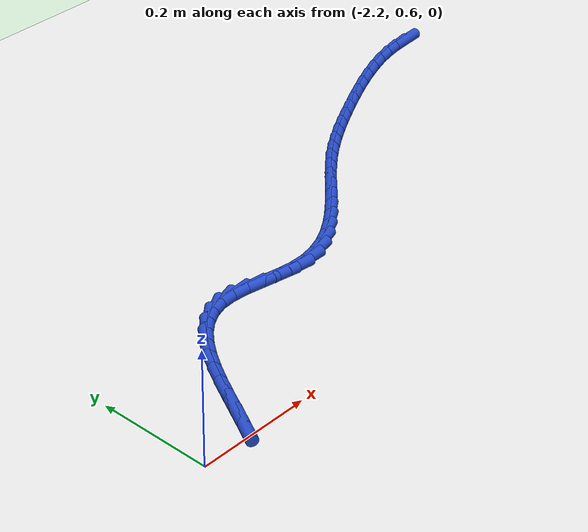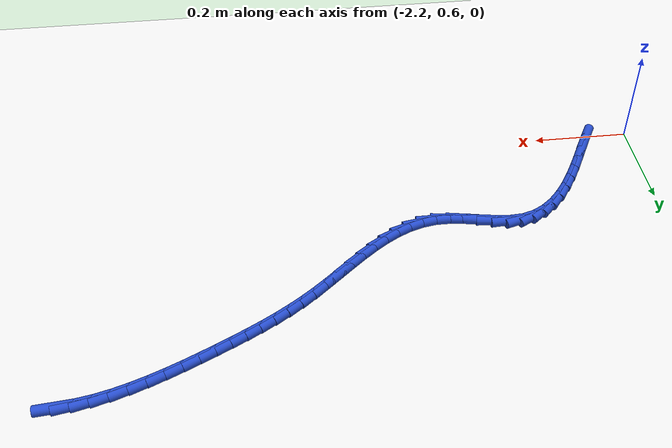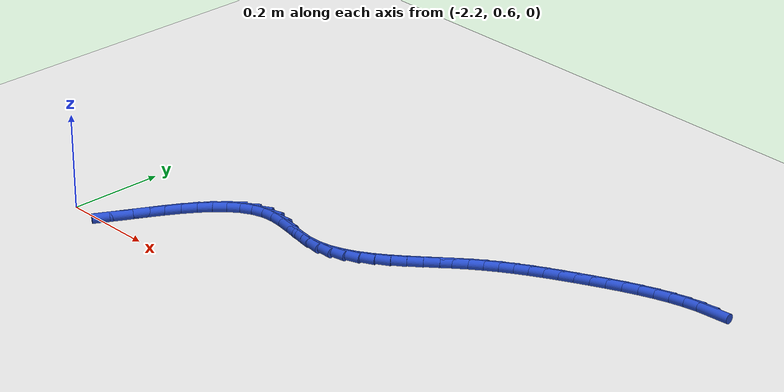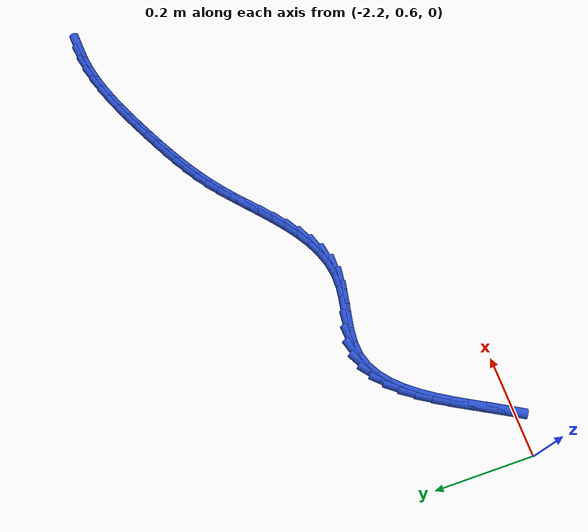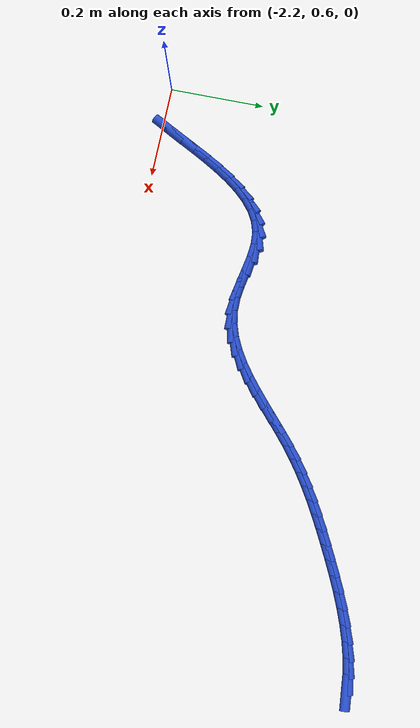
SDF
<sdf version="1.6">
 <world name="default">
  <model name="ground_plane">
   <static>1</static>
   <link name="link">
    <collision name="collision">
     <geometry><plane><normal>0 0 1</normal><size>100 100</size></plane></geometry>
     <surface><friction><ode><mu>100</mu><mu2>50</mu2></ode></friction></surface>
    </collision>
    <visual name="visual">
     <cast_shadows>0</cast_shadows>
     <geometry><plane><normal>0 0 1</normal><size>100 100</size></plane></geometry>
     <material>
      <script><uri>file://media/materials/scripts/gazebo.material</uri><name>Gazebo/WhiteGlow</name></script>
     </material>
    </visual>
   </link>
  </model>
  <model name="line">
   <link name="link_60">
    <pose>-1.0539897530955762 1.1876812872854638 0.01 0 1.57 0.08418251228025432</pose>
    <collision name="collision">
     <geometry><cylinder><radius>0.01</radius><length>0.08</length></cylinder></geometry>
    </collision>
    <visual name="visual">
     <material>
      <script><name>Gazebo/Blue</name><uri>file://media/materials/scripts/gazebo.material</uri></script>
     </material>
     <geometry><cylinder><radius>0.01</radius><length>0.08</length></cylinder></geometry>
    </visual>
   </link>
   <link name="link_61">
    <pose>-1.0828424156970546 1.1852466437503728 0.01 0 1.57 0.1748429041281084</pose>
    <collision name="collision">
     <geometry><cylinder><radius>0.01</radius><length>0.08</length></cylinder></geometry>
    </collision>
    <visual name="visual">
     <material>
      <script><name>Gazebo/Blue</name><uri>file://media/materials/scripts/gazebo.material</uri></script>
     </material>
     <geometry><cylinder><radius>0.01</radius><length>0.08</length></cylinder></geometry>
    </visual>
   </link>
   <link name="link_62">
    <pose>-1.1122371444981942 1.1800541644165696 0.01 0 1.57 0.24942533777935838</pose>
    <collision name="collision">
     <geometry><cylinder><radius>0.01</radius><length>0.08</length></cylinder></geometry>
    </collision>
    <visual name="visual">
     <material>
      <script><name>Gazebo/Blue</name><uri>file://media/materials/scripts/gazebo.material</uri></script>
     </material>
     <geometry><cylinder><radius>0.01</radius><length>0.08</length></cylinder></geometry>
    </visual>
   </link>
   <link name="link_63">
    <pose>-1.1419808045113828 1.172477565439318 0.01 0 1.57 0.31028462605610674</pose>
    <collision name="collision">
     <geometry><cylinder><radius>0.01</radius><length>0.08</length></cylinder></geometry>
    </collision>
    <visual name="visual">
     <material>
      <script><name>Gazebo/Blue</name><uri>file://media/materials/scripts/gazebo.material</uri></script>
     </material>
     <geometry><cylinder><radius>0.01</radius><length>0.08</length></cylinder></geometry>
    </visual>
   </link>
   <link name="link_64">
    <pose>-1.1718802607490075 1.16289056297388 0.01 0 1.57 0.3595160472740397</pose>
    <collision name="collision">
     <geometry><cylinder><radius>0.01</radius><length>0.08</length></cylinder></geometry>
    </collision>
    <visual name="visual">
     <material>
      <script><name>Gazebo/Blue</name><uri>file://media/materials/scripts/gazebo.material</uri></script>
     </material>
     <geometry><cylinder><radius>0.01</radius><length>0.08</length></cylinder></geometry>
    </visual>
   </link>
   <link name="link_65">
    <pose>-1.2017423782234538 1.151666873175518 0.01 0 1.57 0.3988142096564022</pose>
    <collision name="collision">
     <geometry><cylinder><radius>0.01</radius><length>0.08</length></cylinder></geometry>
    </collision>
    <visual name="visual">
     <material>
      <script><name>Gazebo/Blue</name><uri>file://media/materials/scripts/gazebo.material</uri></script>
     </material>
     <geometry><cylinder><radius>0.01</radius><length>0.08</length></cylinder></geometry>
    </visual>
   </link>
   <link name="link_66">
    <pose>-1.2313740219471103 1.1391802121994963 0.01 0 1.57 0.4294481745117285</pose>
    <collision name="collision">
     <geometry><cylinder><radius>0.01</radius><length>0.08</length></cylinder></geometry>
    </collision>
    <visual name="visual">
     <material>
      <script><name>Gazebo/Blue</name><uri>file://media/materials/scripts/gazebo.material</uri></script>
     </material>
     <geometry><cylinder><radius>0.01</radius><length>0.08</length></cylinder></geometry>
    </visual>
   </link>
   <link name="link_67">
    <pose>-1.2605820569323627 1.1258042962010761 0.01 0 1.57 0.45227430445376476</pose>
    <collision name="collision">
     <geometry><cylinder><radius>0.01</radius><length>0.08</length></cylinder></geometry>
    </collision>
    <visual name="visual">
     <material>
      <script><name>Gazebo/Blue</name><uri>file://media/materials/scripts/gazebo.material</uri></script>
     </material>
     <geometry><cylinder><radius>0.01</radius><length>0.08</length></cylinder></geometry>
    </visual>
   </link>
   <link name="link_68">
    <pose>-1.289173348191599 1.111912841335522 0.01 0 1.57 0.4677604209521697</pose>
    <collision name="collision">
     <geometry><cylinder><radius>0.01</radius><length>0.08</length></cylinder></geometry>
    </collision>
    <visual name="visual">
     <material>
      <script><name>Gazebo/Blue</name><uri>file://media/materials/scripts/gazebo.material</uri></script>
     </material>
     <geometry><cylinder><radius>0.01</radius><length>0.08</length></cylinder></geometry>
    </visual>
   </link>
   <link name="link_69">
    <pose>-1.3169551234946955 1.0978788320389177 0.01 0 1.57 0.47967126198886395</pose>
    <collision name="collision">
     <geometry><cylinder><radius>0.01</radius><length>0.08</length></cylinder></geometry>
    </collision>
    <visual name="visual">
     <material>
      <script><name>Gazebo/Blue</name><uri>file://media/materials/scripts/gazebo.material</uri></script>
     </material>
     <geometry><cylinder><radius>0.01</radius><length>0.08</length></cylinder></geometry>
    </visual>
   </link>
   <link name="link_70">
    <pose>-1.3438194016507499 1.0839042204982132 0.01 0 1.57 0.4964913899550093</pose>
    <collision name="collision">
     <geometry><cylinder><radius>0.01</radius><length>0.08</length></cylinder></geometry>
    </collision>
    <visual name="visual">
     <material>
      <script><name>Gazebo/Blue</name><uri>file://media/materials/scripts/gazebo.material</uri></script>
     </material>
     <geometry><cylinder><radius>0.01</radius><length>0.08</length></cylinder></geometry>
    </visual>
   </link>
   <link name="link_71">
    <pose>-1.3698514094422356 1.069801238541432 0.01 0 1.57 0.5194225142401093</pose>
    <collision name="collision">
     <geometry><cylinder><radius>0.01</radius><length>0.08</length></cylinder></geometry>
    </collision>
    <visual name="visual">
     <material>
      <script><name>Gazebo/Blue</name><uri>file://media/materials/scripts/gazebo.material</uri></script>
     </material>
     <geometry><cylinder><radius>0.01</radius><length>0.08</length></cylinder></geometry>
    </visual>
   </link>
   <link name="link_72">
    <pose>-1.3951631518309955 1.0553281036539617 0.01 0 1.57 0.548210332757114</pose>
    <collision name="collision">
     <geometry><cylinder><radius>0.01</radius><length>0.08</length></cylinder></geometry>
    </collision>
    <visual name="visual">
     <material>
      <script><name>Gazebo/Blue</name><uri>file://media/materials/scripts/gazebo.material</uri></script>
     </material>
     <geometry><cylinder><radius>0.01</radius><length>0.08</length></cylinder></geometry>
    </visual>
   </link>
   <link name="link_73">
    <pose>-1.419866633778871 1.04024303332119 0.01 0 1.57 0.5822792945771894</pose>
    <collision name="collision">
     <geometry><cylinder><radius>0.01</radius><length>0.08</length></cylinder></geometry>
    </collision>
    <visual name="visual">
     <material>
      <script><name>Gazebo/Blue</name><uri>file://media/materials/scripts/gazebo.material</uri></script>
     </material>
     <geometry><cylinder><radius>0.01</radius><length>0.08</length></cylinder></geometry>
    </visual>
   </link>
   <link name="link_74">
    <pose>-1.4440738602477041 1.0243042450285038 0.01 0 1.57 0.6207462131361181</pose>
    <collision name="collision">
     <geometry><cylinder><radius>0.01</radius><length>0.08</length></cylinder></geometry>
    </collision>
    <visual name="visual">
     <material>
      <script><name>Gazebo/Blue</name><uri>file://media/materials/scripts/gazebo.material</uri></script>
     </material>
     <geometry><cylinder><radius>0.01</radius><length>0.08</length></cylinder></geometry>
    </visual>
   </link>
   <link name="link_75">
    <pose>-1.467896836199337 1.0072699562612912 0.01 0 1.57 0.6624778548712713</pose>
    <collision name="collision">
     <geometry><cylinder><radius>0.01</radius><length>0.08</length></cylinder></geometry>
    </collision>
    <visual name="visual">
     <material>
      <script><name>Gazebo/Blue</name><uri>file://media/materials/scripts/gazebo.material</uri></script>
     </material>
     <geometry><cylinder><radius>0.01</radius><length>0.08</length></cylinder></geometry>
    </visual>
   </link>
   <link name="link_76">
    <pose>-1.4914475676875383 0.9888984325415573 0.01 0 1.57 0.7016660697950372</pose>
    <collision name="collision">
     <geometry><cylinder><radius>0.01</radius><length>0.08</length></cylinder></geometry>
    </collision>
    <visual name="visual">
     <material>
      <script><name>Gazebo/Blue</name><uri>file://media/materials/scripts/gazebo.material</uri></script>
     </material>
     <geometry><cylinder><radius>0.01</radius><length>0.08</length></cylinder></geometry>
    </visual>
   </link>
   <link name="link_77">
    <pose>-1.514842125236504 0.969126745694375 0.01 0 1.57 0.7237987166077713</pose>
    <collision name="collision">
     <geometry><cylinder><radius>0.01</radius><length>0.08</length></cylinder></geometry>
    </collision>
    <visual name="visual">
     <material>
      <script><name>Gazebo/Blue</name><uri>file://media/materials/scripts/gazebo.material</uri></script>
     </material>
     <geometry><cylinder><radius>0.01</radius><length>0.08</length></cylinder></geometry>
    </visual>
   </link>
   <link name="link_78">
    <pose>-1.538209812366686 0.9484741204183047 0.01 0 1.57 0.7273877888025314</pose>
    <collision name="collision">
     <geometry><cylinder><radius>0.01</radius><length>0.08</length></cylinder></geometry>
    </collision>
    <visual name="visual">
     <material>
      <script><name>Gazebo/Blue</name><uri>file://media/materials/scripts/gazebo.material</uri></script>
     </material>
     <geometry><cylinder><radius>0.01</radius><length>0.08</length></cylinder></geometry>
    </visual>
   </link>
   <link name="link_79">
    <pose>-1.5616826211500408 0.9275780575720696 0.01 0 1.57 0.7129672218733895</pose>
    <collision name="collision">
     <geometry><cylinder><radius>0.01</radius><length>0.08</length></cylinder></geometry>
    </collision>
    <visual name="visual">
     <material>
      <script><name>Gazebo/Blue</name><uri>file://media/materials/scripts/gazebo.material</uri></script>
     </material>
     <geometry><cylinder><radius>0.01</radius><length>0.08</length></cylinder></geometry>
    </visual>
   </link>
   <link name="link_80">
    <pose>-1.5853925436585254 0.9070760580143931 0.01 0 1.57 0.6799662331584919</pose>
    <collision name="collision">
     <geometry><cylinder><radius>0.01</radius><length>0.08</length></cylinder></geometry>
    </collision>
    <visual name="visual">
     <material>
      <script><name>Gazebo/Blue</name><uri>file://media/materials/scripts/gazebo.material</uri></script>
     </material>
     <geometry><cylinder><radius>0.01</radius><length>0.08</length></cylinder></geometry>
    </visual>
   </link>
   <link name="link_81">
    <pose>-1.609471571964096 0.8876056226039972 0.01 0 1.57 0.6267954406049271</pose>
    <collision name="collision">
     <geometry><cylinder><radius>0.01</radius><length>0.08</length></cylinder></geometry>
    </collision>
    <visual name="visual">
     <material>
      <script><name>Gazebo/Blue</name><uri>file://media/materials/scripts/gazebo.material</uri></script>
     </material>
     <geometry><cylinder><radius>0.01</radius><length>0.08</length></cylinder></geometry>
    </visual>
   </link>
   <link name="link_82">
    <pose>-1.6340516981387092 0.8698042521996056 0.01 0 1.57 0.5510500421278144</pose>
    <collision name="collision">
     <geometry><cylinder><radius>0.01</radius><length>0.08</length></cylinder></geometry>
    </collision>
    <visual name="visual">
     <material>
      <script><name>Gazebo/Blue</name><uri>file://media/materials/scripts/gazebo.material</uri></script>
     </material>
     <geometry><cylinder><radius>0.01</radius><length>0.08</length></cylinder></geometry>
    </visual>
   </link>
   <link name="link_83">
    <pose>-1.6592649142543223 0.8543094476599409 0.01 0 1.57 0.4500558443667388</pose>
    <collision name="collision">
     <geometry><cylinder><radius>0.01</radius><length>0.08</length></cylinder></geometry>
    </collision>
    <visual name="visual">
     <material>
      <script><name>Gazebo/Blue</name><uri>file://media/materials/scripts/gazebo.material</uri></script>
     </material>
     <geometry><cylinder><radius>0.01</radius><length>0.08</length></cylinder></geometry>
    </visual>
   </link>
   <link name="link_84">
    <pose>-1.685243212382892 0.8417587098437264 0.01 0 1.57 0.3221092617392389</pose>
    <collision name="collision">
     <geometry><cylinder><radius>0.01</radius><length>0.08</length></cylinder></geometry>
    </collision>
    <visual name="visual">
     <material>
      <script><name>Gazebo/Blue</name><uri>file://media/materials/scripts/gazebo.material</uri></script>
     </material>
     <geometry><cylinder><radius>0.01</radius><length>0.08</length></cylinder></geometry>
    </visual>
   </link>
   <link name="link_85">
    <pose>-1.7121185845963742 0.8327895396096848 0.01 0 1.57 0.16861122429301012</pose>
    <collision name="collision">
     <geometry><cylinder><radius>0.01</radius><length>0.08</length></cylinder></geometry>
    </collision>
    <visual name="visual">
     <material>
      <script><name>Gazebo/Blue</name><uri>file://media/materials/scripts/gazebo.material</uri></script>
     </material>
     <geometry><cylinder><radius>0.01</radius><length>0.08</length></cylinder></geometry>
    </visual>
   </link>
   <link name="link_86">
    <pose>-1.7400230229667268 0.8280394378165392 0.01 0 1.57 -0.0008295176016593528</pose>
    <collision name="collision">
     <geometry><cylinder><radius>0.01</radius><length>0.08</length></cylinder></geometry>
    </collision>
    <visual name="visual">
     <material>
      <script><name>Gazebo/Blue</name><uri>file://media/materials/scripts/gazebo.material</uri></script>
     </material>
     <geometry><cylinder><radius>0.01</radius><length>0.08</length></cylinder></geometry>
    </visual>
   </link>
   <link name="link_87">
    <pose>-1.7690655945628035 0.8280635291464014 0.01 0 1.57 -0.13033685083568358</pose>
    <collision name="collision">
     <geometry><cylinder><radius>0.01</radius><length>0.08</length></cylinder></geometry>
    </collision>
    <visual name="visual">
     <material>
      <script><name>Gazebo/Blue</name><uri>file://media/materials/scripts/gazebo.material</uri></script>
     </material>
     <geometry><cylinder><radius>0.01</radius><length>0.08</length></cylinder></geometry>
    </visual>
   </link>
   <link name="link_88">
    <pose>-1.7989559026079869 0.8319815489757636 0.01 0 1.57 -0.18751315754812717</pose>
    <collision name="collision">
     <geometry><cylinder><radius>0.01</radius><length>0.08</length></cylinder></geometry>
    </collision>
    <visual name="visual">
     <material>
      <script><name>Gazebo/Blue</name><uri>file://media/materials/scripts/gazebo.material</uri></script>
     </material>
     <geometry><cylinder><radius>0.01</radius><length>0.08</length></cylinder></geometry>
    </visual>
   </link>
   <link name="link_89">
    <pose>-1.8290643516532394 0.837694393598698 0.01 0 1.57 -0.17895232858107793</pose>
    <collision name="collision">
     <geometry><cylinder><radius>0.01</radius><length>0.08</length></cylinder></geometry>
    </collision>
    <visual name="visual">
     <material>
      <script><name>Gazebo/Blue</name><uri>file://media/materials/scripts/gazebo.material</uri></script>
     </material>
     <geometry><cylinder><radius>0.01</radius><length>0.08</length></cylinder></geometry>
    </visual>
   </link>
   <link name="link_90">
    <pose>-1.8587505754211804 0.8430642566031634 0.01 0 1.57 -0.10059253345415542</pose>
    <collision name="collision">
     <geometry><cylinder><radius>0.01</radius><length>0.08</length></cylinder></geometry>
    </collision>
    <visual name="visual">
     <material>
      <script><name>Gazebo/Blue</name><uri>file://media/materials/scripts/gazebo.material</uri></script>
     </material>
     <geometry><cylinder><radius>0.01</radius><length>0.08</length></cylinder></geometry>
    </visual>
   </link>
   <link name="link_91">
    <pose>-1.88737420763443 0.8459533315771188 0.01 0 1.57 0.06376709966594006</pose>
    <collision name="collision">
     <geometry><cylinder><radius>0.01</radius><length>0.08</length></cylinder></geometry>
    </collision>
    <visual name="visual">
     <material>
      <script><name>Gazebo/Blue</name><uri>file://media/materials/scripts/gazebo.material</uri></script>
     </material>
     <geometry><cylinder><radius>0.01</radius><length>0.08</length></cylinder></geometry>
    </visual>
   </link>
   <link name="link_92">
    <pose>-1.9142980178445472 0.8442341474493312 0.01 0 1.57 0.29305421241989654</pose>
    <collision name="collision">
     <geometry><cylinder><radius>0.01</radius><length>0.08</length></cylinder></geometry>
    </collision>
    <visual name="visual">
     <material>
      <script><name>Gazebo/Blue</name><uri>file://media/materials/scripts/gazebo.material</uri></script>
     </material>
     <geometry><cylinder><radius>0.01</radius><length>0.08</length></cylinder></geometry>
    </visual>
   </link>
   <link name="link_93">
    <pose>-1.9391727586119931 0.8367283928769278 0.01 0 1.57 0.506999409771653</pose>
    <collision name="collision">
     <geometry><cylinder><radius>0.01</radius><length>0.08</length></cylinder></geometry>
    </collision>
    <visual name="visual">
     <material>
      <script><name>Gazebo/Blue</name><uri>file://media/materials/scripts/gazebo.material</uri></script>
     </material>
     <geometry><cylinder><radius>0.01</radius><length>0.08</length></cylinder></geometry>
    </visual>
   </link>
   <link name="link_94">
    <pose>-1.9621650191328708 0.8239578962677391 0.01 0 1.57 0.6824880233089597</pose>
    <collision name="collision">
     <geometry><cylinder><radius>0.01</radius><length>0.08</length></cylinder></geometry>
    </collision>
    <visual name="visual">
     <material>
      <script><name>Gazebo/Blue</name><uri>file://media/materials/scripts/gazebo.material</uri></script>
     </material>
     <geometry><cylinder><radius>0.01</radius><length>0.08</length></cylinder></geometry>
    </visual>
   </link>
   <link name="link_95">
    <pose>-1.98349500751949 0.8066212079693186 0.01 0 1.57 0.8174225742683786</pose>
    <collision name="collision">
     <geometry><cylinder><radius>0.01</radius><length>0.08</length></cylinder></geometry>
    </collision>
    <visual name="visual">
     <material>
      <script><name>Gazebo/Blue</name><uri>file://media/materials/scripts/gazebo.material</uri></script>
     </material>
     <geometry><cylinder><radius>0.01</radius><length>0.08</length></cylinder></geometry>
    </visual>
   </link>
   <link name="link_96">
    <pose>-2.003382931884157 0.7854168783292186 0.01 0 1.57 0.9172363161077022</pose>
    <collision name="collision">
     <geometry><cylinder><radius>0.01</radius><length>0.08</length></cylinder></geometry>
    </collision>
    <visual name="visual">
     <material>
      <script><name>Gazebo/Blue</name><uri>file://media/materials/scripts/gazebo.material</uri></script>
     </material>
     <geometry><cylinder><radius>0.01</radius><length>0.08</length></cylinder></geometry>
    </visual>
   </link>
   <link name="link_97">
    <pose>-2.022049000339182 0.7610434576949919 0.01 0 1.57 0.9887893034054478</pose>
    <collision name="collision">
     <geometry><cylinder><radius>0.01</radius><length>0.08</length></cylinder></geometry>
    </collision>
    <visual name="visual">
     <material>
      <script><name>Gazebo/Blue</name><uri>file://media/materials/scripts/gazebo.material</uri></script>
     </material>
     <geometry><cylinder><radius>0.01</radius><length>0.08</length></cylinder></geometry>
    </visual>
   </link>
   <link name="link_98">
    <pose>-2.039713420996872 0.7341994964141912 0.01 0 1.57 1.0377733750908735</pose>
    <collision name="collision">
     <geometry><cylinder><radius>0.01</radius><length>0.08</length></cylinder></geometry>
    </collision>
    <visual name="visual">
     <material>
      <script><name>Gazebo/Blue</name><uri>file://media/materials/scripts/gazebo.material</uri></script>
     </material>
     <geometry><cylinder><radius>0.01</radius><length>0.08</length></cylinder></geometry>
    </visual>
   </link>
   <link name="link_99">
    <pose>-2.056596401969536 0.7055835448343694 0.01 0 1.57 1.0681449090273276</pose>
    <collision name="collision">
     <geometry><cylinder><radius>0.01</radius><length>0.08</length></cylinder></geometry>
    </collision>
    <visual name="visual">
     <material>
      <script><name>Gazebo/Blue</name><uri>file://media/materials/scripts/gazebo.material</uri></script>
     </material>
     <geometry><cylinder><radius>0.01</radius><length>0.08</length></cylinder></geometry>
    </visual>
   </link>
   <link name="link_100">
    <pose>-2.072918151369482 0.6758941533030786 0.01 0 1.57 1.0822269507125466</pose>
    <collision name="collision">
     <geometry><cylinder><radius>0.01</radius><length>0.08</length></cylinder></geometry>
    </collision>
    <visual name="visual">
     <material>
      <script><name>Gazebo/Blue</name><uri>file://media/materials/scripts/gazebo.material</uri></script>
     </material>
     <geometry><cylinder><radius>0.01</radius><length>0.08</length></cylinder></geometry>
    </visual>
   </link>
   <link name="link_101">
    <pose>-2.088898877309017 0.6458298721678719 0.01 0 1.57 1.0808891988339147</pose>
    <collision name="collision">
     <geometry><cylinder><radius>0.01</radius><length>0.08</length></cylinder></geometry>
    </collision>
    <visual name="visual">
     <material>
      <script><name>Gazebo/Blue</name><uri>file://media/materials/scripts/gazebo.material</uri></script>
     </material>
     <geometry><cylinder><radius>0.01</radius><length>0.08</length></cylinder></geometry>
    </visual>
   </link>
   <link name="link_102">
    <pose>-2.1047587060212836 0.6160890979408734 0.01 0 1.57 1.068919766904965</pose>
    <collision name="collision">
     <geometry><cylinder><radius>0.01</radius><length>0.08</length></cylinder></geometry>
    </collision>
    <visual name="visual">
     <material>
      <script><name>Gazebo/Blue</name><uri>file://media/materials/scripts/gazebo.material</uri></script>
     </material>
     <geometry><cylinder><radius>0.01</radius><length>0.08</length></cylinder></geometry>
    </visual>
   </link>
  </model>
 </world>
</sdf>
